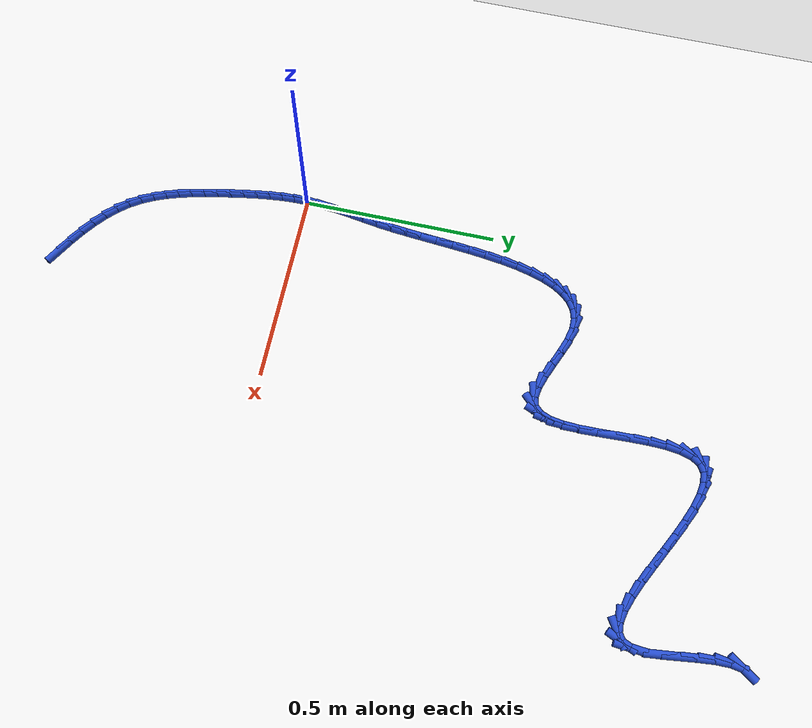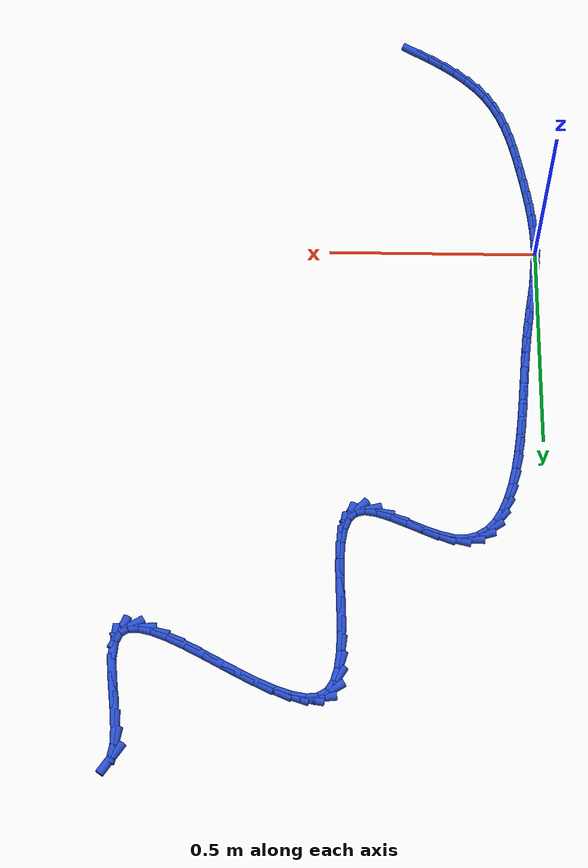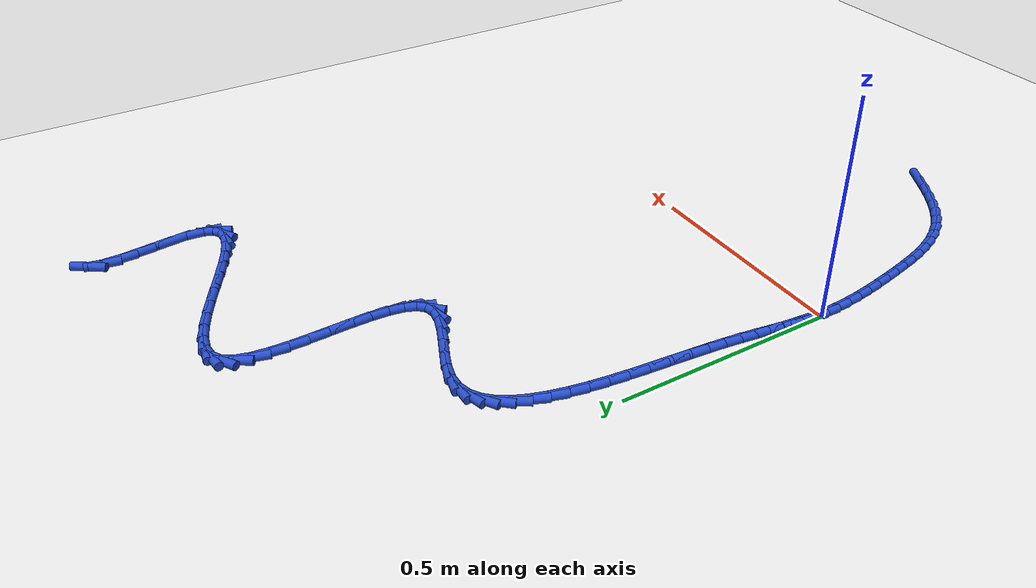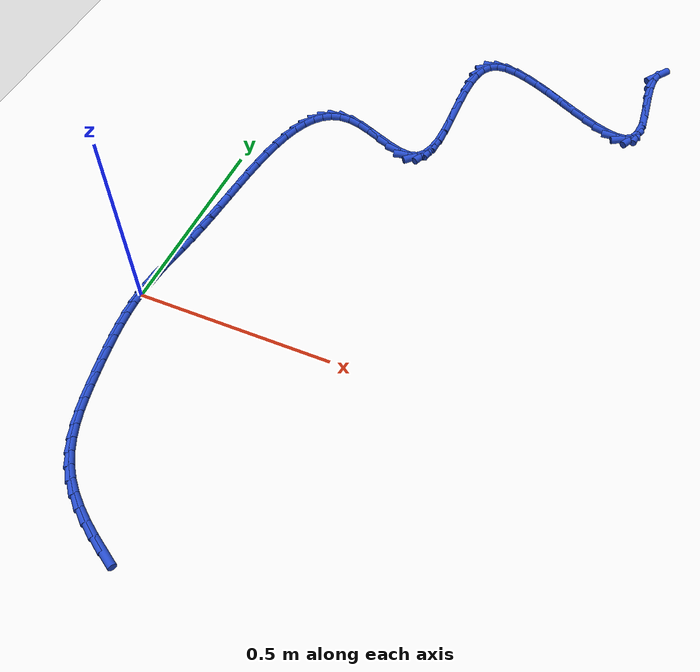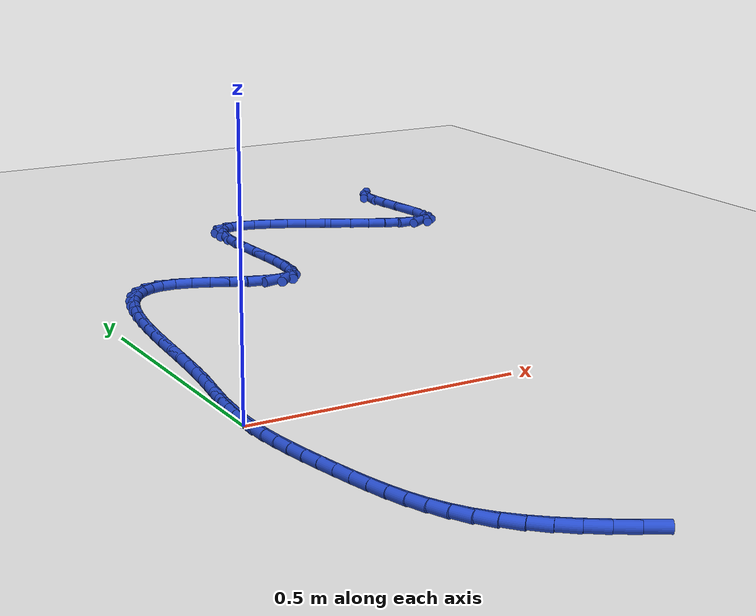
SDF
<sdf version="1.6">
 <world name="default">
  <model name="ground_plane">
   <static>1</static>
   <link name="link">
    <collision name="collision">
     <geometry><plane><normal>0 0 1</normal><size>100 100</size></plane></geometry>
     <surface><friction><ode><mu>100</mu><mu2>50</mu2></ode></friction></surface>
    </collision>
    <visual name="visual">
     <cast_shadows>0</cast_shadows>
     <geometry><plane><normal>0 0 1</normal><size>100 100</size></plane></geometry>
     <material>
      <script><uri>file://media/materials/scripts/gazebo.material</uri><name>Gazebo/WhiteGlow</name></script>
     </material>
    </visual>
   </link>
  </model>
  <model name="line">
   <link name="link_0">
    <pose>1.734723475976807e-18 5.551115123125783e-17 0.01 0 1.57 1.5240284344869657</pose>
    <collision name="collision">
     <geometry><cylinder><radius>0.01</radius><length>0.08</length></cylinder></geometry>
    </collision>
    <visual name="visual">
     <material>
      <script><name>Gazebo/Blue</name><uri>file://media/materials/scripts/gazebo.material</uri></script>
     </material>
     <geometry><cylinder><radius>0.01</radius><length>0.08</length></cylinder></geometry>
    </visual>
   </link>
   <link name="link_1">
    <pose>0.0014910842718699158 0.03185940016066017 0.01 0 1.57 1.4774279963178367</pose>
    <collision name="collision">
     <geometry><cylinder><radius>0.01</radius><length>0.08</length></cylinder></geometry>
    </collision>
    <visual name="visual">
     <material>
      <script><name>Gazebo/Blue</name><uri>file://media/materials/scripts/gazebo.material</uri></script>
     </material>
     <geometry><cylinder><radius>0.01</radius><length>0.08</length></cylinder></geometry>
    </visual>
   </link>
   <link name="link_2">
    <pose>0.004453179364275393 0.06349199520359833 0.01 0 1.57 1.443887008379939</pose>
    <collision name="collision">
     <geometry><cylinder><radius>0.01</radius><length>0.08</length></cylinder></geometry>
    </collision>
    <visual name="visual">
     <material>
      <script><name>Gazebo/Blue</name><uri>file://media/materials/scripts/gazebo.material</uri></script>
     </material>
     <geometry><cylinder><radius>0.01</radius><length>0.08</length></cylinder></geometry>
    </visual>
   </link>
   <link name="link_3">
    <pose>0.008521601685281743 0.09537741475801953 0.01 0 1.57 1.4243843772346196</pose>
    <collision name="collision">
     <geometry><cylinder><radius>0.01</radius><length>0.08</length></cylinder></geometry>
    </collision>
    <visual name="visual">
     <material>
      <script><name>Gazebo/Blue</name><uri>file://media/materials/scripts/gazebo.material</uri></script>
     </material>
     <geometry><cylinder><radius>0.01</radius><length>0.08</length></cylinder></geometry>
    </visual>
   </link>
   <link name="link_4">
    <pose>0.013331667642954273 0.1279952884531287 0.01 0 1.57 1.418654762533308</pose>
    <collision name="collision">
     <geometry><cylinder><radius>0.01</radius><length>0.08</length></cylinder></geometry>
    </collision>
    <visual name="visual">
     <material>
      <script><name>Gazebo/Blue</name><uri>file://media/materials/scripts/gazebo.material</uri></script>
     </material>
     <geometry><cylinder><radius>0.01</radius><length>0.08</length></cylinder></geometry>
    </visual>
   </link>
   <link name="link_5">
    <pose>0.018518693645358294 0.16182524591813086 0.01 0 1.57 1.4254585022880335</pose>
    <collision name="collision">
     <geometry><cylinder><radius>0.01</radius><length>0.08</length></cylinder></geometry>
    </collision>
    <visual name="visual">
     <material>
      <script><name>Gazebo/Blue</name><uri>file://media/materials/scripts/gazebo.material</uri></script>
     </material>
     <geometry><cylinder><radius>0.01</radius><length>0.08</length></cylinder></geometry>
    </visual>
   </link>
   <link name="link_6">
    <pose>0.023717996100559108 0.19734691678223096 0.01 0 1.57 1.4429094265668516</pose>
    <collision name="collision">
     <geometry><cylinder><radius>0.01</radius><length>0.08</length></cylinder></geometry>
    </collision>
    <visual name="visual">
     <material>
      <script><name>Gazebo/Blue</name><uri>file://media/materials/scripts/gazebo.material</uri></script>
     </material>
     <geometry><cylinder><radius>0.01</radius><length>0.08</length></cylinder></geometry>
    </visual>
   </link>
   <link name="link_7">
    <pose>0.028564891416622034 0.2350399306746339 0.01 0 1.57 1.4664914685075665</pose>
    <collision name="collision">
     <geometry><cylinder><radius>0.01</radius><length>0.08</length></cylinder></geometry>
    </collision>
    <visual name="visual">
     <material>
      <script><name>Gazebo/Blue</name><uri>file://media/materials/scripts/gazebo.material</uri></script>
     </material>
     <geometry><cylinder><radius>0.01</radius><length>0.08</length></cylinder></geometry>
    </visual>
   </link>
   <link name="link_8">
    <pose>0.032773942285463 0.2752468369233878 0.01 0 1.57 1.4829178304906576</pose>
    <collision name="collision">
     <geometry><cylinder><radius>0.01</radius><length>0.08</length></cylinder></geometry>
    </collision>
    <visual name="visual">
     <material>
      <script><name>Gazebo/Blue</name><uri>file://media/materials/scripts/gazebo.material</uri></script>
     </material>
     <geometry><cylinder><radius>0.01</radius><length>0.08</length></cylinder></geometry>
    </visual>
   </link>
   <link name="link_9">
    <pose>0.03650082810726461 0.31754714073287466 0.01 0 1.57 1.4896878176367092</pose>
    <collision name="collision">
     <geometry><cylinder><radius>0.01</radius><length>0.08</length></cylinder></geometry>
    </collision>
    <visual name="visual">
     <material>
      <script><name>Gazebo/Blue</name><uri>file://media/materials/scripts/gazebo.material</uri></script>
     </material>
     <geometry><cylinder><radius>0.01</radius><length>0.08</length></cylinder></geometry>
    </visual>
   </link>
   <link name="link_10">
    <pose>0.040053815713403836 0.361256401416205 0.01 0 1.57 1.4879968515611792</pose>
    <collision name="collision">
     <geometry><cylinder><radius>0.01</radius><length>0.08</length></cylinder></geometry>
    </collision>
    <visual name="visual">
     <material>
      <script><name>Gazebo/Blue</name><uri>file://media/materials/scripts/gazebo.material</uri></script>
     </material>
     <geometry><cylinder><radius>0.01</radius><length>0.08</length></cylinder></geometry>
    </visual>
   </link>
   <link name="link_11">
    <pose>0.043741318808968616 0.4056899242241976 0.01 0 1.57 1.478187125413041</pose>
    <collision name="collision">
     <geometry><cylinder><radius>0.01</radius><length>0.08</length></cylinder></geometry>
    </collision>
    <visual name="visual">
     <material>
      <script><name>Gazebo/Blue</name><uri>file://media/materials/scripts/gazebo.material</uri></script>
     </material>
     <geometry><cylinder><radius>0.01</radius><length>0.08</length></cylinder></geometry>
    </visual>
   </link>
   <link name="link_12">
    <pose>0.04787175109904686 0.4501630144076707 0.01 0 1.57 1.4598686201475548</pose>
    <collision name="collision">
     <geometry><cylinder><radius>0.01</radius><length>0.08</length></cylinder></geometry>
    </collision>
    <visual name="visual">
     <material>
      <script><name>Gazebo/Blue</name><uri>file://media/materials/scripts/gazebo.material</uri></script>
     </material>
     <geometry><cylinder><radius>0.01</radius><length>0.08</length></cylinder></geometry>
    </visual>
   </link>
   <link name="link_13">
    <pose>0.05275352628872648 0.4939909772174427 0.01 0 1.57 1.4318898131964048</pose>
    <collision name="collision">
     <geometry><cylinder><radius>0.01</radius><length>0.08</length></cylinder></geometry>
    </collision>
    <visual name="visual">
     <material>
      <script><name>Gazebo/Blue</name><uri>file://media/materials/scripts/gazebo.material</uri></script>
     </material>
     <geometry><cylinder><radius>0.01</radius><length>0.08</length></cylinder></geometry>
    </visual>
   </link>
   <link name="link_14">
    <pose>0.05869505808309543 0.5364891179043322 0.01 0 1.57 1.3921615187901617</pose>
    <collision name="collision">
     <geometry><cylinder><radius>0.01</radius><length>0.08</length></cylinder></geometry>
    </collision>
    <visual name="visual">
     <material>
      <script><name>Gazebo/Blue</name><uri>file://media/materials/scripts/gazebo.material</uri></script>
     </material>
     <geometry><cylinder><radius>0.01</radius><length>0.08</length></cylinder></geometry>
    </visual>
   </link>
   <link name="link_15">
    <pose>0.0660047601872416 0.5769727417191575 0.01 0 1.57 1.3373036843806707</pose>
    <collision name="collision">
     <geometry><cylinder><radius>0.01</radius><length>0.08</length></cylinder></geometry>
    </collision>
    <visual name="visual">
     <material>
      <script><name>Gazebo/Blue</name><uri>file://media/materials/scripts/gazebo.material</uri></script>
     </material>
     <geometry><cylinder><radius>0.01</radius><length>0.08</length></cylinder></geometry>
    </visual>
   </link>
   <link name="link_16">
    <pose>0.07499104630625293 0.6147571539127371 0.01 0 1.57 1.262066126437284</pose>
    <collision name="collision">
     <geometry><cylinder><radius>0.01</radius><length>0.08</length></cylinder></geometry>
    </collision>
    <visual name="visual">
     <material>
      <script><name>Gazebo/Blue</name><uri>file://media/materials/scripts/gazebo.material</uri></script>
     </material>
     <geometry><cylinder><radius>0.01</radius><length>0.08</length></cylinder></geometry>
    </visual>
   </link>
   <link name="link_17">
    <pose>0.08596233014521734 0.6491576597358895 0.01 0 1.57 1.1585384522899038</pose>
    <collision name="collision">
     <geometry><cylinder><radius>0.01</radius><length>0.08</length></cylinder></geometry>
    </collision>
    <visual name="visual">
     <material>
      <script><name>Gazebo/Blue</name><uri>file://media/materials/scripts/gazebo.material</uri></script>
     </material>
     <geometry><cylinder><radius>0.01</radius><length>0.08</length></cylinder></geometry>
    </visual>
   </link>
   <link name="link_18">
    <pose>0.09922702540922274 0.679489564439433 0.01 0 1.57 1.0155808414627308</pose>
    <collision name="collision">
     <geometry><cylinder><radius>0.01</radius><length>0.08</length></cylinder></geometry>
    </collision>
    <visual name="visual">
     <material>
      <script><name>Gazebo/Blue</name><uri>file://media/materials/scripts/gazebo.material</uri></script>
     </material>
     <geometry><cylinder><radius>0.01</radius><length>0.08</length></cylinder></geometry>
    </visual>
   </link>
   <link name="link_19">
    <pose>0.11509354580335707 0.7050681732741864 0.01 0 1.57 0.8204288141330384</pose>
    <collision name="collision">
     <geometry><cylinder><radius>0.01</radius><length>0.08</length></cylinder></geometry>
    </collision>
    <visual name="visual">
     <material>
      <script><name>Gazebo/Blue</name><uri>file://media/materials/scripts/gazebo.material</uri></script>
     </material>
     <geometry><cylinder><radius>0.01</radius><length>0.08</length></cylinder></geometry>
    </visual>
   </link>
   <link name="link_20">
    <pose>0.13387030503270822 0.7252087914909674 0.01 0 1.57 0.5674037125127195</pose>
    <collision name="collision">
     <geometry><cylinder><radius>0.01</radius><length>0.08</length></cylinder></geometry>
    </collision>
    <visual name="visual">
     <material>
      <script><name>Gazebo/Blue</name><uri>file://media/materials/scripts/gazebo.material</uri></script>
     </material>
     <geometry><cylinder><radius>0.01</radius><length>0.08</length></cylinder></geometry>
    </visual>
   </link>
   <link name="link_21">
    <pose>0.15586571680236416 0.7392267243405953 0.01 0 1.57 0.27534187046365877</pose>
    <collision name="collision">
     <geometry><cylinder><radius>0.01</radius><length>0.08</length></cylinder></geometry>
    </collision>
    <visual name="visual">
     <material>
      <script><name>Gazebo/Blue</name><uri>file://media/materials/scripts/gazebo.material</uri></script>
     </material>
     <geometry><cylinder><radius>0.01</radius><length>0.08</length></cylinder></geometry>
    </visual>
   </link>
   <link name="link_22">
    <pose>0.1813881948174128 0.746437277073888 0.01 0 1.57 -0.009588929353175622</pose>
    <collision name="collision">
     <geometry><cylinder><radius>0.01</radius><length>0.08</length></cylinder></geometry>
    </collision>
    <visual name="visual">
     <material>
      <script><name>Gazebo/Blue</name><uri>file://media/materials/scripts/gazebo.material</uri></script>
     </material>
     <geometry><cylinder><radius>0.01</radius><length>0.08</length></cylinder></geometry>
    </visual>
   </link>
   <link name="link_23">
    <pose>0.21074615160790677 0.7461557570718578 0.01 0 1.57 -0.23177906006464233</pose>
    <collision name="collision">
     <geometry><cylinder><radius>0.01</radius><length>0.08</length></cylinder></geometry>
    </collision>
    <visual name="visual">
     <material>
      <script><name>Gazebo/Blue</name><uri>file://media/materials/scripts/gazebo.material</uri></script>
     </material>
     <geometry><cylinder><radius>0.01</radius><length>0.08</length></cylinder></geometry>
    </visual>
   </link>
   <link name="link_24">
    <pose>0.2438984722624785 0.7383311218168889 0.01 0 1.57 -0.3503277729756189</pose>
    <collision name="collision">
     <geometry><cylinder><radius>0.01</radius><length>0.08</length></cylinder></geometry>
    </collision>
    <visual name="visual">
     <material>
      <script><name>Gazebo/Blue</name><uri>file://media/materials/scripts/gazebo.material</uri></script>
     </material>
     <geometry><cylinder><radius>0.01</radius><length>0.08</length></cylinder></geometry>
    </visual>
   </link>
   <link name="link_25">
    <pose>0.27946827006113223 0.7253339181764713 0.01 0 1.57 -0.3971235530927722</pose>
    <collision name="collision">
     <geometry><cylinder><radius>0.01</radius><length>0.08</length></cylinder></geometry>
    </collision>
    <visual name="visual">
     <material>
      <script><name>Gazebo/Blue</name><uri>file://media/materials/scripts/gazebo.material</uri></script>
     </material>
     <geometry><cylinder><radius>0.01</radius><length>0.08</length></cylinder></geometry>
    </visual>
   </link>
   <link name="link_26">
    <pose>0.31575961091191423 0.710113086516362 0.01 0 1.57 -0.3894745904414337</pose>
    <collision name="collision">
     <geometry><cylinder><radius>0.01</radius><length>0.08</length></cylinder></geometry>
    </collision>
    <visual name="visual">
     <material>
      <script><name>Gazebo/Blue</name><uri>file://media/materials/scripts/gazebo.material</uri></script>
     </material>
     <geometry><cylinder><radius>0.01</radius><length>0.08</length></cylinder></geometry>
    </visual>
   </link>
   <link name="link_27">
    <pose>0.35107656072287097 0.6956175672023183 0.01 0 1.57 -0.320069579930596</pose>
    <collision name="collision">
     <geometry><cylinder><radius>0.01</radius><length>0.08</length></cylinder></geometry>
    </collision>
    <visual name="visual">
     <material>
      <script><name>Gazebo/Blue</name><uri>file://media/materials/scripts/gazebo.material</uri></script>
     </material>
     <geometry><cylinder><radius>0.01</radius><length>0.08</length></cylinder></geometry>
    </visual>
   </link>
   <link name="link_28">
    <pose>0.38372318540204886 0.6847963006000972 0.01 0 1.57 -0.14736863514359108</pose>
    <collision name="collision">
     <geometry><cylinder><radius>0.01</radius><length>0.08</length></cylinder></geometry>
    </collision>
    <visual name="visual">
     <material>
      <script><name>Gazebo/Blue</name><uri>file://media/materials/scripts/gazebo.material</uri></script>
     </material>
     <geometry><cylinder><radius>0.01</radius><length>0.08</length></cylinder></geometry>
    </visual>
   </link>
   <link name="link_29">
    <pose>0.4120035508574942 0.680598227075456 0.01 0 1.57 0.235723255302384</pose>
    <collision name="collision">
     <geometry><cylinder><radius>0.01</radius><length>0.08</length></cylinder></geometry>
    </collision>
    <visual name="visual">
     <material>
      <script><name>Gazebo/Blue</name><uri>file://media/materials/scripts/gazebo.material</uri></script>
     </material>
     <geometry><cylinder><radius>0.01</radius><length>0.08</length></cylinder></geometry>
    </visual>
   </link>
   <link name="link_30">
    <pose>0.4342413646948932 0.6859394953644006 0.01 0 1.57 0.7992052413507794</pose>
    <collision name="collision">
     <geometry><cylinder><radius>0.01</radius><length>0.08</length></cylinder></geometry>
    </collision>
    <visual name="visual">
     <material>
      <script><name>Gazebo/Blue</name><uri>file://media/materials/scripts/gazebo.material</uri></script>
     </material>
     <geometry><cylinder><radius>0.01</radius><length>0.08</length></cylinder></geometry>
    </visual>
   </link>
   <link name="link_31">
    <pose>0.4498247377898314 0.7019592429398303 0.01 0 1.57 1.1961392918587017</pose>
    <collision name="collision">
     <geometry><cylinder><radius>0.01</radius><length>0.08</length></cylinder></geometry>
    </collision>
    <visual name="visual">
     <material>
      <script><name>Gazebo/Blue</name><uri>file://media/materials/scripts/gazebo.material</uri></script>
     </material>
     <geometry><cylinder><radius>0.01</radius><length>0.08</length></cylinder></geometry>
    </visual>
   </link>
   <link name="link_32">
    <pose>0.45972914390245384 0.7271465198460642 0.01 0 1.57 1.4088559822709672</pose>
    <collision name="collision">
     <geometry><cylinder><radius>0.01</radius><length>0.08</length></cylinder></geometry>
    </collision>
    <visual name="visual">
     <material>
      <script><name>Gazebo/Blue</name><uri>file://media/materials/scripts/gazebo.material</uri></script>
     </material>
     <geometry><cylinder><radius>0.01</radius><length>0.08</length></cylinder></geometry>
    </visual>
   </link>
   <link name="link_33">
    <pose>0.4650595559600769 0.7597741784839765 0.01 0 1.57 1.5222859646955555</pose>
    <collision name="collision">
     <geometry><cylinder><radius>0.01</radius><length>0.08</length></cylinder></geometry>
    </collision>
    <visual name="visual">
     <material>
      <script><name>Gazebo/Blue</name><uri>file://media/materials/scripts/gazebo.material</uri></script>
     </material>
     <geometry><cylinder><radius>0.01</radius><length>0.08</length></cylinder></geometry>
    </visual>
   </link>
   <link name="link_34">
    <pose>0.46692094689001723 0.7981150712544434 0.01 0 1.57 -1.5589213087593814</pose>
    <collision name="collision">
     <geometry><cylinder><radius>0.01</radius><length>0.08</length></cylinder></geometry>
    </collision>
    <visual name="visual">
     <material>
      <script><name>Gazebo/Blue</name><uri>file://media/materials/scripts/gazebo.material</uri></script>
     </material>
     <geometry><cylinder><radius>0.01</radius><length>0.08</length></cylinder></geometry>
    </visual>
   </link>
   <link name="link_35">
    <pose>0.466418289619591 0.8404420505583386 0.01 0 1.57 -1.5313036660955552</pose>
    <collision name="collision">
     <geometry><cylinder><radius>0.01</radius><length>0.08</length></cylinder></geometry>
    </collision>
    <visual name="visual">
     <material>
      <script><name>Gazebo/Blue</name><uri>file://media/materials/scripts/gazebo.material</uri></script>
     </material>
     <geometry><cylinder><radius>0.01</radius><length>0.08</length></cylinder></geometry>
    </visual>
   </link>
   <link name="link_36">
    <pose>0.46465655707611453 0.8850279687965372 0.01 0 1.57 -1.528358785863385</pose>
    <collision name="collision">
     <geometry><cylinder><radius>0.01</radius><length>0.08</length></cylinder></geometry>
    </collision>
    <visual name="visual">
     <material>
      <script><name>Gazebo/Blue</name><uri>file://media/materials/scripts/gazebo.material</uri></script>
     </material>
     <geometry><cylinder><radius>0.01</radius><length>0.08</length></cylinder></geometry>
    </visual>
   </link>
   <link name="link_37">
    <pose>0.46274072218690454 0.9301456783699142 0.01 0 1.57 -1.5488300834947064</pose>
    <collision name="collision">
     <geometry><cylinder><radius>0.01</radius><length>0.08</length></cylinder></geometry>
    </collision>
    <visual name="visual">
     <material>
      <script><name>Gazebo/Blue</name><uri>file://media/materials/scripts/gazebo.material</uri></script>
     </material>
     <geometry><cylinder><radius>0.01</radius><length>0.08</length></cylinder></geometry>
    </visual>
   </link>
   <link name="link_38">
    <pose>0.4617757578792772 0.9740680316793452 0.01 0 1.57 1.5441956952280265</pose>
    <collision name="collision">
     <geometry><cylinder><radius>0.01</radius><length>0.08</length></cylinder></geometry>
    </collision>
    <visual name="visual">
     <material>
      <script><name>Gazebo/Blue</name><uri>file://media/materials/scripts/gazebo.material</uri></script>
     </material>
     <geometry><cylinder><radius>0.01</radius><length>0.08</length></cylinder></geometry>
    </visual>
   </link>
   <link name="link_39">
    <pose>0.462866637080549 1.015067881125704 0.01 0 1.57 1.4543605258313845</pose>
    <collision name="collision">
     <geometry><cylinder><radius>0.01</radius><length>0.08</length></cylinder></geometry>
    </collision>
    <visual name="visual">
     <material>
      <script><name>Gazebo/Blue</name><uri>file://media/materials/scripts/gazebo.material</uri></script>
     </material>
     <geometry><cylinder><radius>0.01</radius><length>0.08</length></cylinder></geometry>
    </visual>
   </link>
   <link name="link_40">
    <pose>0.46711833271803627 1.051418079109866 0.01 0 1.57 1.2939267069660565</pose>
    <collision name="collision">
     <geometry><cylinder><radius>0.01</radius><length>0.08</length></cylinder></geometry>
    </collision>
    <visual name="visual">
     <material>
      <script><name>Gazebo/Blue</name><uri>file://media/materials/scripts/gazebo.material</uri></script>
     </material>
     <geometry><cylinder><radius>0.01</radius><length>0.08</length></cylinder></geometry>
    </visual>
   </link>
   <link name="link_41">
    <pose>0.47563581771905544 1.0813914780327056 0.01 0 1.57 1.0050009832171045</pose>
    <collision name="collision">
     <geometry><cylinder><radius>0.01</radius><length>0.08</length></cylinder></geometry>
    </collision>
    <visual name="visual">
     <material>
      <script><name>Gazebo/Blue</name><uri>file://media/materials/scripts/gazebo.material</uri></script>
     </material>
     <geometry><cylinder><radius>0.01</radius><length>0.08</length></cylinder></geometry>
    </visual>
   </link>
   <link name="link_42">
    <pose>0.48952406501092294 1.1032609302950986 0.01 0 1.57 0.5401077132505143</pose>
    <collision name="collision">
     <geometry><cylinder><radius>0.01</radius><length>0.08</length></cylinder></geometry>
    </collision>
    <visual name="visual">
     <material>
      <script><name>Gazebo/Blue</name><uri>file://media/materials/scripts/gazebo.material</uri></script>
     </material>
     <geometry><cylinder><radius>0.01</radius><length>0.08</length></cylinder></geometry>
    </visual>
   </link>
   <link name="link_43">
    <pose>0.509806724819831 1.1154219273254888 0.01 0 1.57 0.09911444449227311</pose>
    <collision name="collision">
     <geometry><cylinder><radius>0.01</radius><length>0.08</length></cylinder></geometry>
    </collision>
    <visual name="visual">
     <material>
      <script><name>Gazebo/Blue</name><uri>file://media/materials/scripts/gazebo.material</uri></script>
     </material>
     <geometry><cylinder><radius>0.01</radius><length>0.08</length></cylinder></geometry>
    </visual>
   </link>
   <link name="link_44">
    <pose>0.536321418665322 1.118058555929035 0.01 0 1.57 -0.1672673672036123</pose>
    <collision name="collision">
     <geometry><cylinder><radius>0.01</radius><length>0.08</length></cylinder></geometry>
    </collision>
    <visual name="visual">
     <material>
      <script><name>Gazebo/Blue</name><uri>file://media/materials/scripts/gazebo.material</uri></script>
     </material>
     <geometry><cylinder><radius>0.01</radius><length>0.08</length></cylinder></geometry>
    </visual>
   </link>
   <link name="link_45">
    <pose>0.5680082613288457 1.1127083915687388 0.01 0 1.57 -0.3177267045697395</pose>
    <collision name="collision">
     <geometry><cylinder><radius>0.01</radius><length>0.08</length></cylinder></geometry>
    </collision>
    <visual name="visual">
     <material>
      <script><name>Gazebo/Blue</name><uri>file://media/materials/scripts/gazebo.material</uri></script>
     </material>
     <geometry><cylinder><radius>0.01</radius><length>0.08</length></cylinder></geometry>
    </visual>
   </link>
   <link name="link_46">
    <pose>0.6037851584369688 1.1009425023132355 0.01 0 1.57 -0.4046404868182337</pose>
    <collision name="collision">
     <geometry><cylinder><radius>0.01</radius><length>0.08</length></cylinder></geometry>
    </collision>
    <visual name="visual">
     <material>
      <script><name>Gazebo/Blue</name><uri>file://media/materials/scripts/gazebo.material</uri></script>
     </material>
     <geometry><cylinder><radius>0.01</radius><length>0.08</length></cylinder></geometry>
    </visual>
   </link>
   <link name="link_47">
    <pose>0.642570015616258 1.0843319562311602 0.01 0 1.57 -0.4543448045155918</pose>
    <collision name="collision">
     <geometry><cylinder><radius>0.01</radius><length>0.08</length></cylinder></geometry>
    </collision>
    <visual name="visual">
     <material>
      <script><name>Gazebo/Blue</name><uri>file://media/materials/scripts/gazebo.material</uri></script>
     </material>
     <geometry><cylinder><radius>0.01</radius><length>0.08</length></cylinder></geometry>
    </visual>
   </link>
   <link name="link_48">
    <pose>0.6832807384932802 1.064447821391149 0.01 0 1.57 -0.4791084993262882</pose>
    <collision name="collision">
     <geometry><cylinder><radius>0.01</radius><length>0.08</length></cylinder></geometry>
    </collision>
    <visual name="visual">
     <material>
      <script><name>Gazebo/Blue</name><uri>file://media/materials/scripts/gazebo.material</uri></script>
     </material>
     <geometry><cylinder><radius>0.01</radius><length>0.08</length></cylinder></geometry>
    </visual>
   </link>
   <link name="link_49">
    <pose>0.7248352326946021 1.0428611658618376 0.01 0 1.57 -0.4839614027424454</pose>
    <collision name="collision">
     <geometry><cylinder><radius>0.01</radius><length>0.08</length></cylinder></geometry>
    </collision>
    <visual name="visual">
     <material>
      <script><name>Gazebo/Blue</name><uri>file://media/materials/scripts/gazebo.material</uri></script>
     </material>
     <geometry><cylinder><radius>0.01</radius><length>0.08</length></cylinder></geometry>
    </visual>
   </link>
   <link name="link_50">
    <pose>0.7661514038467914 1.0211430577118619 0.01 0 1.57 -0.469244754834158</pose>
    <collision name="collision">
     <geometry><cylinder><radius>0.01</radius><length>0.08</length></cylinder></geometry>
    </collision>
    <visual name="visual">
     <material>
      <script><name>Gazebo/Blue</name><uri>file://media/materials/scripts/gazebo.material</uri></script>
     </material>
     <geometry><cylinder><radius>0.01</radius><length>0.08</length></cylinder></geometry>
    </visual>
   </link>
   <link name="link_51">
    <pose>0.8061471575764142 1.0008645650098564 0.01 0 1.57 -0.4305879268047215</pose>
    <collision name="collision">
     <geometry><cylinder><radius>0.01</radius><length>0.08</length></cylinder></geometry>
    </collision>
    <visual name="visual">
     <material>
      <script><name>Gazebo/Blue</name><uri>file://media/materials/scripts/gazebo.material</uri></script>
     </material>
     <geometry><cylinder><radius>0.01</radius><length>0.08</length></cylinder></geometry>
    </visual>
   </link>
   <link name="link_52">
    <pose>0.8437403995100371 0.9835967558244579 0.01 0 1.57 -0.3560772928252433</pose>
    <collision name="collision">
     <geometry><cylinder><radius>0.01</radius><length>0.08</length></cylinder></geometry>
    </collision>
    <visual name="visual">
     <material>
      <script><name>Gazebo/Blue</name><uri>file://media/materials/scripts/gazebo.material</uri></script>
     </material>
     <geometry><cylinder><radius>0.01</radius><length>0.08</length></cylinder></geometry>
    </visual>
   </link>
   <link name="link_53">
    <pose>0.8778490352742276 0.9709106982243018 0.01 0 1.57 -0.2176482071715738</pose>
    <collision name="collision">
     <geometry><cylinder><radius>0.01</radius><length>0.08</length></cylinder></geometry>
    </collision>
    <visual name="visual">
     <material>
      <script><name>Gazebo/Blue</name><uri>file://media/materials/scripts/gazebo.material</uri></script>
     </material>
     <geometry><cylinder><radius>0.01</radius><length>0.08</length></cylinder></geometry>
    </visual>
   </link>
   <link name="link_54">
    <pose>0.9073909704955525 0.9643774602780233 0.01 0 1.57 0.049791097524645965</pose>
    <collision name="collision">
     <geometry><cylinder><radius>0.01</radius><length>0.08</length></cylinder></geometry>
    </collision>
    <visual name="visual">
     <material>
      <script><name>Gazebo/Blue</name><uri>file://media/materials/scripts/gazebo.material</uri></script>
     </material>
     <geometry><cylinder><radius>0.01</radius><length>0.08</length></cylinder></geometry>
    </visual>
   </link>
   <link name="link_55">
    <pose>0.9312841108005785 0.9655681100542584 0.01 0 1.57 0.5484460207274386</pose>
    <collision name="collision">
     <geometry><cylinder><radius>0.01</radius><length>0.08</length></cylinder></geometry>
    </collision>
    <visual name="visual">
     <material>
      <script><name>Gazebo/Blue</name><uri>file://media/materials/scripts/gazebo.material</uri></script>
     </material>
     <geometry><cylinder><radius>0.01</radius><length>0.08</length></cylinder></geometry>
    </visual>
   </link>
   <link name="link_56">
    <pose>0.9484463618158725 0.9760537156216427 0.01 0 1.57 1.149002849617359</pose>
    <collision name="collision">
     <geometry><cylinder><radius>0.01</radius><length>0.08</length></cylinder></geometry>
    </collision>
    <visual name="visual">
     <material>
      <script><name>Gazebo/Blue</name><uri>file://media/materials/scripts/gazebo.material</uri></script>
     </material>
     <geometry><cylinder><radius>0.01</radius><length>0.08</length></cylinder></geometry>
    </visual>
   </link>
   <link name="link_57">
    <pose>0.9579377813561684 0.9972056699392743 0.01 0 1.57 1.4845202666143227</pose>
    <collision name="collision">
     <geometry><cylinder><radius>0.01</radius><length>0.08</length></cylinder></geometry>
    </collision>
    <visual name="visual">
     <material>
      <script><name>Gazebo/Blue</name><uri>file://media/materials/scripts/gazebo.material</uri></script>
     </material>
     <geometry><cylinder><radius>0.01</radius><length>0.08</length></cylinder></geometry>
    </visual>
   </link>
   <link name="link_59">
    <pose>0.9584513250103387 1.0653313723726479 0.01 0 1.57 -1.453334506921732</pose>
    <collision name="collision">
     <geometry><cylinder><radius>0.01</radius><length>0.08</length></cylinder></geometry>
    </collision>
    <visual name="visual">
     <material>
      <script><name>Gazebo/Blue</name><uri>file://media/materials/scripts/gazebo.material</uri></script>
     </material>
     <geometry><cylinder><radius>0.01</radius><length>0.08</length></cylinder></geometry>
    </visual>
   </link>
   <link name="link_60">
    <pose>0.9535761821625041 1.1066443791599965 0.01 0 1.57 -1.4405859051673429</pose>
    <collision name="collision">
     <geometry><cylinder><radius>0.01</radius><length>0.08</length></cylinder></geometry>
    </collision>
    <visual name="visual">
     <material>
      <script><name>Gazebo/Blue</name><uri>file://media/materials/scripts/gazebo.material</uri></script>
     </material>
     <geometry><cylinder><radius>0.01</radius><length>0.08</length></cylinder></geometry>
    </visual>
   </link>
   <link name="link_61">
    <pose>0.9480302516493135 1.1489954572337304 0.01 0 1.57 -1.4686961868022166</pose>
    <collision name="collision">
     <geometry><cylinder><radius>0.01</radius><length>0.08</length></cylinder></geometry>
    </collision>
    <visual name="visual">
     <material>
      <script><name>Gazebo/Blue</name><uri>file://media/materials/scripts/gazebo.material</uri></script>
     </material>
     <geometry><cylinder><radius>0.01</radius><length>0.08</length></cylinder></geometry>
    </visual>
   </link>
   <link name="link_62">
    <pose>0.9438764000592097 1.1895380822733064 0.01 0 1.57 -1.5513239515936352</pose>
    <collision name="collision">
     <geometry><cylinder><radius>0.01</radius><length>0.08</length></cylinder></geometry>
    </collision>
    <visual name="visual">
     <material>
      <script><name>Gazebo/Blue</name><uri>file://media/materials/scripts/gazebo.material</uri></script>
     </material>
     <geometry><cylinder><radius>0.01</radius><length>0.08</length></cylinder></geometry>
    </visual>
   </link>
   <link name="link_63">
    <pose>0.9431774939806357 1.225425729958181 0.01 0 1.57 1.4026369081183898</pose>
    <collision name="collision">
     <geometry><cylinder><radius>0.01</radius><length>0.08</length></cylinder></geometry>
    </collision>
    <visual name="visual">
     <material>
      <script><name>Gazebo/Blue</name><uri>file://media/materials/scripts/gazebo.material</uri></script>
     </material>
     <geometry><cylinder><radius>0.01</radius><length>0.08</length></cylinder></geometry>
    </visual>
   </link>
   <link name="link_64">
    <pose>0.9479964000020334 1.2538118759678112 0.01 0 1.57 0.9688243990664752</pose>
    <collision name="collision">
     <geometry><cylinder><radius>0.01</radius><length>0.08</length></cylinder></geometry>
    </collision>
    <visual name="visual">
     <material>
      <script><name>Gazebo/Blue</name><uri>file://media/materials/scripts/gazebo.material</uri></script>
     </material>
     <geometry><cylinder><radius>0.01</radius><length>0.08</length></cylinder></geometry>
    </visual>
   </link>
   <link name="link_240">
    <pose>0.2827834839233062 -0.5966891336161212 0.01 0 1.57 -0.5284508912818575</pose>
    <collision name="collision">
     <geometry><cylinder><radius>0.01</radius><length>0.08</length></cylinder></geometry>
    </collision>
    <visual name="visual">
     <material>
      <script><name>Gazebo/Blue</name><uri>file://media/materials/scripts/gazebo.material</uri></script>
     </material>
     <geometry><cylinder><radius>0.01</radius><length>0.08</length></cylinder></geometry>
    </visual>
   </link>
   <link name="link_241">
    <pose>0.24850449126254848 -0.5766757557103238 0.01 0 1.57 -0.5706046025002043</pose>
    <collision name="collision">
     <geometry><cylinder><radius>0.01</radius><length>0.08</length></cylinder></geometry>
    </collision>
    <visual name="visual">
     <material>
      <script><name>Gazebo/Blue</name><uri>file://media/materials/scripts/gazebo.material</uri></script>
     </material>
     <geometry><cylinder><radius>0.01</radius><length>0.08</length></cylinder></geometry>
    </visual>
   </link>
   <link name="link_242">
    <pose>0.21587443808267195 -0.5557330736237451 0.01 0 1.57 -0.625256437921119</pose>
    <collision name="collision">
     <geometry><cylinder><radius>0.01</radius><length>0.08</length></cylinder></geometry>
    </collision>
    <visual name="visual">
     <material>
      <script><name>Gazebo/Blue</name><uri>file://media/materials/scripts/gazebo.material</uri></script>
     </material>
     <geometry><cylinder><radius>0.01</radius><length>0.08</length></cylinder></geometry>
    </visual>
   </link>
   <link name="link_243">
    <pose>0.1853035046236292 -0.5336646982377112 0.01 0 1.57 -0.694158995355192</pose>
    <collision name="collision">
     <geometry><cylinder><radius>0.01</radius><length>0.08</length></cylinder></geometry>
    </collision>
    <visual name="visual">
     <material>
      <script><name>Gazebo/Blue</name><uri>file://media/materials/scripts/gazebo.material</uri></script>
     </material>
     <geometry><cylinder><radius>0.01</radius><length>0.08</length></cylinder></geometry>
    </visual>
   </link>
   <link name="link_244">
    <pose>0.15720187112537287 -0.510274240433549 0.01 0 1.57 -0.7791501459159438</pose>
    <collision name="collision">
     <geometry><cylinder><radius>0.01</radius><length>0.08</length></cylinder></geometry>
    </collision>
    <visual name="visual">
     <material>
      <script><name>Gazebo/Blue</name><uri>file://media/materials/scripts/gazebo.material</uri></script>
     </material>
     <geometry><cylinder><radius>0.01</radius><length>0.08</length></cylinder></geometry>
    </visual>
   </link>
   <link name="link_245">
    <pose>0.13197971782785486 -0.4853653110925835 0.01 0 1.57 -0.8816665137354738</pose>
    <collision name="collision">
     <geometry><cylinder><radius>0.01</radius><length>0.08</length></cylinder></geometry>
    </collision>
    <visual name="visual">
     <material>
      <script><name>Gazebo/Blue</name><uri>file://media/materials/scripts/gazebo.material</uri></script>
     </material>
     <geometry><cylinder><radius>0.01</radius><length>0.08</length></cylinder></geometry>
    </visual>
   </link>
   <link name="link_246">
    <pose>0.11004569941380274 -0.4587422926323069 0.01 0 1.57 -0.9935988888576945</pose>
    <collision name="collision">
     <geometry><cylinder><radius>0.01</radius><length>0.08</length></cylinder></geometry>
    </collision>
    <visual name="visual">
     <material>
      <script><name>Gazebo/Blue</name><uri>file://media/materials/scripts/gazebo.material</uri></script>
     </material>
     <geometry><cylinder><radius>0.01</radius><length>0.08</length></cylinder></geometry>
    </visual>
   </link>
   <link name="link_247">
    <pose>0.09155087154454383 -0.4303398457432582 0.01 0 1.57 -1.094834257933832</pose>
    <collision name="collision">
     <geometry><cylinder><radius>0.01</radius><length>0.08</length></cylinder></geometry>
    </collision>
    <visual name="visual">
     <material>
      <script><name>Gazebo/Blue</name><uri>file://media/materials/scripts/gazebo.material</uri></script>
     </material>
     <geometry><cylinder><radius>0.01</radius><length>0.08</length></cylinder></geometry>
    </visual>
   </link>
   <link name="link_248">
    <pose>0.07610093445006466 -0.4003684394766113 0.01 0 1.57 -1.1806619730055754</pose>
    <collision name="collision">
     <geometry><cylinder><radius>0.01</radius><length>0.08</length></cylinder></geometry>
    </collision>
    <visual name="visual">
     <material>
      <script><name>Gazebo/Blue</name><uri>file://media/materials/scripts/gazebo.material</uri></script>
     </material>
     <geometry><cylinder><radius>0.01</radius><length>0.08</length></cylinder></geometry>
    </visual>
   </link>
   <link name="link_249">
    <pose>0.06323214712959818 -0.36907366213039133 0.01 0 1.57 -1.2501436260339647</pose>
    <collision name="collision">
     <geometry><cylinder><radius>0.01</radius><length>0.08</length></cylinder></geometry>
    </collision>
    <visual name="visual">
     <material>
      <script><name>Gazebo/Blue</name><uri>file://media/materials/scripts/gazebo.material</uri></script>
     </material>
     <geometry><cylinder><radius>0.01</radius><length>0.08</length></cylinder></geometry>
    </visual>
   </link>
   <link name="link_250">
    <pose>0.052480768582377275 -0.33670110200262277 0.01 0 1.57 -1.303371026248858</pose>
    <collision name="collision">
     <geometry><cylinder><radius>0.01</radius><length>0.08</length></cylinder></geometry>
    </collision>
    <visual name="visual">
     <material>
      <script><name>Gazebo/Blue</name><uri>file://media/materials/scripts/gazebo.material</uri></script>
     </material>
     <geometry><cylinder><radius>0.01</radius><length>0.08</length></cylinder></geometry>
    </visual>
   </link>
   <link name="link_251">
    <pose>0.043383057807634864 -0.30349634739133063 0.01 0 1.57 -1.340915251754608</pose>
    <collision name="collision">
     <geometry><cylinder><radius>0.01</radius><length>0.08</length></cylinder></geometry>
    </collision>
    <visual name="visual">
     <material>
      <script><name>Gazebo/Blue</name><uri>file://media/materials/scripts/gazebo.material</uri></script>
     </material>
     <geometry><cylinder><radius>0.01</radius><length>0.08</length></cylinder></geometry>
    </visual>
   </link>
   <link name="link_252">
    <pose>0.0354752738046037 -0.2697049865945387 0.01 0 1.57 -1.3634212852443721</pose>
    <collision name="collision">
     <geometry><cylinder><radius>0.01</radius><length>0.08</length></cylinder></geometry>
    </collision>
    <visual name="visual">
     <material>
      <script><name>Gazebo/Blue</name><uri>file://media/materials/scripts/gazebo.material</uri></script>
     </material>
     <geometry><cylinder><radius>0.01</radius><length>0.08</length></cylinder></geometry>
    </visual>
   </link>
   <link name="link_253">
    <pose>0.028293823493479683 -0.23557257975738624 0.01 0 1.57 -1.3758268653066943</pose>
    <collision name="collision">
     <geometry><cylinder><radius>0.01</radius><length>0.08</length></cylinder></geometry>
    </collision>
    <visual name="visual">
     <material>
      <script><name>Gazebo/Blue</name><uri>file://media/materials/scripts/gazebo.material</uri></script>
     </material>
     <geometry><cylinder><radius>0.01</radius><length>0.08</length></cylinder></geometry>
    </visual>
   </link>
   <link name="link_254">
    <pose>0.02152878921774845 -0.20131543892641027 0.01 0 1.57 -1.3913108315804328</pose>
    <collision name="collision">
     <geometry><cylinder><radius>0.01</radius><length>0.08</length></cylinder></geometry>
    </collision>
    <visual name="visual">
     <material>
      <script><name>Gazebo/Blue</name><uri>file://media/materials/scripts/gazebo.material</uri></script>
     </material>
     <geometry><cylinder><radius>0.01</radius><length>0.08</length></cylinder></geometry>
    </visual>
   </link>
   <link name="link_255">
    <pose>0.015314515317658709 -0.16706532249339293 0.01 0 1.57 -1.412452105241068</pose>
    <collision name="collision">
     <geometry><cylinder><radius>0.01</radius><length>0.08</length></cylinder></geometry>
    </collision>
    <visual name="visual">
     <material>
      <script><name>Gazebo/Blue</name><uri>file://media/materials/scripts/gazebo.material</uri></script>
     </material>
     <geometry><cylinder><radius>0.01</radius><length>0.08</length></cylinder></geometry>
    </visual>
   </link>
   <link name="link_256">
    <pose>0.009865157466015243 -0.13293879884982887 0.01 0 1.57 -1.4396337784331168</pose>
    <collision name="collision">
     <geometry><cylinder><radius>0.01</radius><length>0.08</length></cylinder></geometry>
    </collision>
    <visual name="visual">
     <material>
      <script><name>Gazebo/Blue</name><uri>file://media/materials/scripts/gazebo.material</uri></script>
     </material>
     <geometry><cylinder><radius>0.01</radius><length>0.08</length></cylinder></geometry>
    </visual>
   </link>
   <link name="link_257">
    <pose>0.005394871335622857 -0.09905243638721287 0.01 0 1.57 -1.4733695641948175</pose>
    <collision name="collision">
     <geometry><cylinder><radius>0.01</radius><length>0.08</length></cylinder></geometry>
    </collision>
    <visual name="visual">
     <material>
      <script><name>Gazebo/Blue</name><uri>file://media/materials/scripts/gazebo.material</uri></script>
     </material>
     <geometry><cylinder><radius>0.01</radius><length>0.08</length></cylinder></geometry>
    </visual>
   </link>
   <link name="link_258">
    <pose>0.0021178125992863213 -0.0655228034970396 0.01 0 1.57 -1.5142962413082126</pose>
    <collision name="collision">
     <geometry><cylinder><radius>0.01</radius><length>0.08</length></cylinder></geometry>
    </collision>
    <visual name="visual">
     <material>
      <script><name>Gazebo/Blue</name><uri>file://media/materials/scripts/gazebo.material</uri></script>
     </material>
     <geometry><cylinder><radius>0.01</radius><length>0.08</length></cylinder></geometry>
    </visual>
   </link>
   <link name="link_259">
    <pose>0.000248136929810446 -0.032466468570803826 0.01 0 1.57 -1.5631536077252526</pose>
    <collision name="collision">
     <geometry><cylinder><radius>0.01</radius><length>0.08</length></cylinder></geometry>
    </collision>
    <visual name="visual">
     <material>
      <script><name>Gazebo/Blue</name><uri>file://media/materials/scripts/gazebo.material</uri></script>
     </material>
     <geometry><cylinder><radius>0.01</radius><length>0.08</length></cylinder></geometry>
    </visual>
   </link>
   <link name="link_260">
    <pose>1.734723475976807e-17 -2.220446049250313e-16 0.01 0 1.57 1.5208518826037867</pose>
    <collision name="collision">
     <geometry><cylinder><radius>0.01</radius><length>0.08</length></cylinder></geometry>
    </collision>
    <visual name="visual">
     <material>
      <script><name>Gazebo/Blue</name><uri>file://media/materials/scripts/gazebo.material</uri></script>
     </material>
     <geometry><cylinder><radius>0.01</radius><length>0.08</length></cylinder></geometry>
    </visual>
   </link>
   <link name="link_261">
    <pose>0.0015875574826598217 0.03176003382387648 0.01 0 1.57 1.4537590983679471</pose>
    <collision name="collision">
     <geometry><cylinder><radius>0.01</radius><length>0.08</length></cylinder></geometry>
    </collision>
    <visual name="visual">
     <material>
      <script><name>Gazebo/Blue</name><uri>file://media/materials/scripts/gazebo.material</uri></script>
     </material>
     <geometry><cylinder><radius>0.01</radius><length>0.08</length></cylinder></geometry>
    </visual>
   </link>
   <link name="link_262">
    <pose>0.0052249650505946585 0.06269706450933156 0.01 0 1.57 1.4876517737186485</pose>
    <collision name="collision">
     <geometry><cylinder><radius>0.01</radius><length>0.08</length></cylinder></geometry>
    </collision>
    <visual name="visual">
     <material>
      <script><name>Gazebo/Blue</name><uri>file://media/materials/scripts/gazebo.material</uri></script>
     </material>
     <geometry><cylinder><radius>0.01</radius><length>0.08</length></cylinder></geometry>
    </visual>
   </link>
  </model>
 </world>
</sdf>
